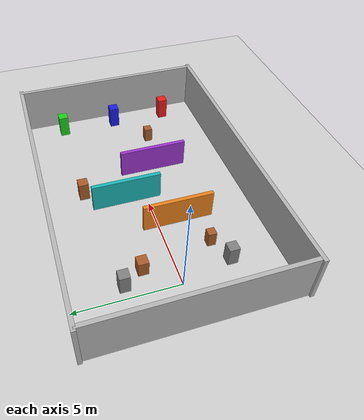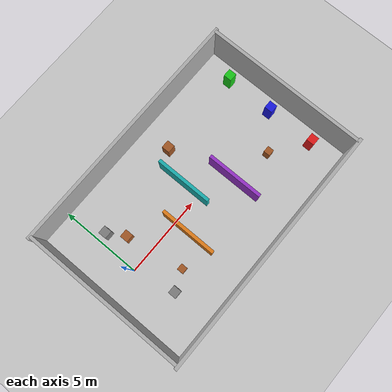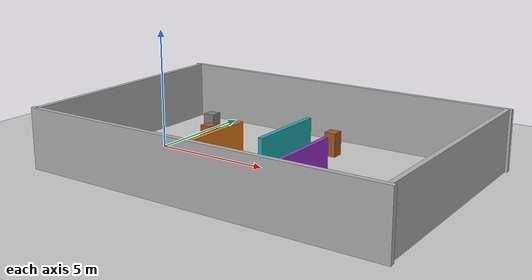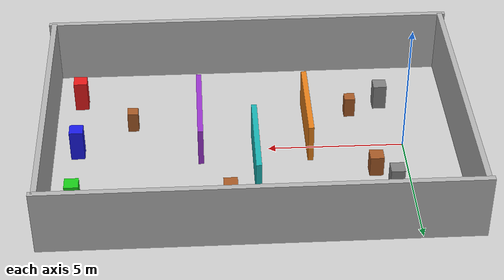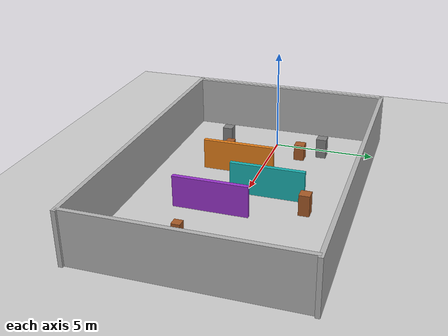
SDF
<?xml version="1.0"?>
<sdf version="1.10">
  <world name="slam_test_world">

    <physics name="default_physics" type="ode">
      <max_step_size>0.001</max_step_size>
      <real_time_factor>1.0</real_time_factor>
      <ode>
        <solver><type>quick</type><iters>50</iters><sor>1.3</sor></solver>
        <constraints>
          <cfm>0.0</cfm><erp>0.2</erp>
          <contact_max_correcting_vel>100.0</contact_max_correcting_vel>
          <contact_surface_layer>0.001</contact_surface_layer>
        </constraints>
      </ode>
    </physics>

    <plugin filename="gz-sim-physics-system"          name="gz::sim::systems::Physics"/>
    <plugin filename="gz-sim-user-commands-system"    name="gz::sim::systems::UserCommands"/>
    <plugin filename="gz-sim-scene-broadcaster-system" name="gz::sim::systems::SceneBroadcaster"/>
    <plugin filename="gz-sim-contact-system"          name="gz::sim::systems::Contact"/>

    <light name="sun" type="directional">
      <pose>0 0 10 0 0 0</pose>
      <cast_shadows>true</cast_shadows>
      <diffuse>0.8 0.8 0.8 1</diffuse>
      <specular>0.2 0.2 0.2 1</specular>
      <direction>-0.5 0.1 -0.9</direction>
    </light>

    <!-- Ground plane -->
    <model name="ground_plane">
      <static>true</static>
      <link name="link">
        <collision name="collision">
          <geometry><plane><normal>0 0 1</normal><size>30 20</size></plane></geometry>
        </collision>
        <visual name="visual">
          <geometry><plane><normal>0 0 1</normal><size>30 20</size></plane></geometry>
          <material><ambient>0.8 0.8 0.8 1</ambient><diffuse>0.8 0.8 0.8 1</diffuse></material>
        </visual>
      </link>
    </model>

    <!-- ===================== OUTER WALLS ===================== -->
    <!-- Room:(12m wide), (10m deep) -->

    <model name="wall_north">
      <static>true</static>
      <pose>5.5 5 1.25 0 0 0</pose>
      <link name="link">
        <collision name="collision"><geometry><box><size>15.4 0.2 2.5</size></box></geometry></collision>
        <visual name="visual">
          <geometry><box><size>15.4 0.2 2.5</size></box></geometry>
          <material><ambient>0.7 0.7 0.7 1</ambient><diffuse>0.7 0.7 0.7 1</diffuse></material>
        </visual>
      </link>
    </model>

    <model name="wall_south">
      <static>true</static>
      <pose>5.5 -5 1.25 0 0 0</pose>
      <link name="link">
        <collision name="collision"><geometry><box><size>15.4 0.2 2.5</size></box></geometry></collision>
        <visual name="visual">
          <geometry><box><size>15.4 0.2 2.5</size></box></geometry>
          <material><ambient>0.7 0.7 0.7 1</ambient><diffuse>0.7 0.7 0.7 1</diffuse></material>
        </visual>
      </link>
    </model>

    <model name="wall_east">
      <static>true</static>
      <pose>13 0 1.25 0 0 0</pose>
      <link name="link">
        <collision name="collision"><geometry><box><size>0.2 10.0 2.5</size></box></geometry></collision>
        <visual name="visual">
          <geometry><box><size>0.2 10.0 2.5</size></box></geometry>
          <material><ambient>0.7 0.7 0.7 1</ambient><diffuse>0.7 0.7 0.7 1</diffuse></material>
        </visual>
      </link>
    </model>

    <model name="wall_west">
      <static>true</static>
      <pose>-2 0 1.25 0 0 0</pose>
      <link name="link">
        <collision name="collision"><geometry><box><size>0.2 10.0 2.5</size></box></geometry></collision>
        <visual name="visual">
          <geometry><box><size>0.2 10.0 2.5</size></box></geometry>
          <material><ambient>0.7 0.7 0.7 1</ambient><diffuse>0.7 0.7 0.7 1</diffuse></material>
        </visual>
      </link>
    </model>

    <!-- ===================== ZONE 1: OBSTACLE COURSE ===================== -->
    <!-- Robot spawns at (0,0) and navigates through these to reach the trash -->

    <!-- Obstacle A -->
    <model name="obs_a">
      <static>true</static>
      <pose>0.6 2.5 0.5 0 0 0</pose>
      <link name="link">
        <collision name="collision"><geometry><box><size>0.5 0.5 1.0</size></box></geometry></collision>
        <visual name="visual">
          <geometry><box><size>0.5 0.5 1.0</size></box></geometry>
          <material><ambient>0.5 0.5 0.5 1</ambient><diffuse>0.5 0.5 0.5 1</diffuse></material>
        </visual>
      </link>
    </model>

    <!-- Obstacle B -->
    <model name="obs_b">
      <static>true</static>
      <pose>0.6 -2.5 0.5 0 0 0</pose>
      <link name="link">
        <collision name="collision"><geometry><box><size>0.5 0.5 1.0</size></box></geometry></collision>
        <visual name="visual">
          <geometry><box><size>0.5 0.5 1.0</size></box></geometry>
          <material><ambient>0.5 0.5 0.5 1</ambient><diffuse>0.5 0.5 0.5 1</diffuse></material>
        </visual>
      </link>
    </model>

    <!-- Obstacle D -->
    <model name="obs_d">
      <static>true</static>
      <pose>1.8 -2.0 0.4 0 0 0</pose>
      <link name="link">
        <collision name="collision"><geometry><box><size>0.4 0.4 0.8</size></box></geometry></collision>
        <visual name="visual">
          <geometry><box><size>0.4 0.4 0.8</size></box></geometry>
          <material><ambient>0.65 0.35 0.15 1</ambient><diffuse>0.65 0.35 0.15 1</diffuse></material>
        </visual>
      </link>
    </model>

    <!-- Obstacle E -->
    <model name="obs_e">
      <static>true</static>
      <pose>1.2 1.5 0.4 0 0 0</pose>
      <link name="link">
        <collision name="collision"><geometry><box><size>0.5 0.5 0.8</size></box></geometry></collision>
        <visual name="visual">
          <geometry><box><size>0.5 0.5 0.8</size></box></geometry>
          <material><ambient>0.65 0.35 0.15 1</ambient><diffuse>0.65 0.35 0.15 1</diffuse></material>
        </visual>
      </link>
    </model>

    <!-- Obstacle G -->
    <model name="obs_g">
      <static>true</static>
      <pose>6.5 3.0 0.5 0 0 0</pose>
      <link name="link">
        <collision name="collision"><geometry><box><size>0.5 0.5 1.0</size></box></geometry></collision>
        <visual name="visual">
          <geometry><box><size>0.5 0.5 1.0</size></box></geometry>
          <material><ambient>0.65 0.35 0.15 1</ambient><diffuse>0.65 0.35 0.15 1</diffuse></material>
        </visual>
      </link>
    </model>

    <!-- Obstacle H -->
    <model name="obs_h">
      <static>true</static>
      <pose>10.0 -1.5 0.4 0 0 0</pose>
      <link name="link">
        <collision name="collision"><geometry><box><size>0.4 0.4 0.8</size></box></geometry></collision>
        <visual name="visual">
          <geometry><box><size>0.4 0.4 0.8</size></box></geometry>
          <material><ambient>0.65 0.35 0.15 1</ambient><diffuse>0.65 0.35 0.15 1</diffuse></material>
        </visual>
      </link>
    </model>

<!-- ===================== ZONE 2: MAZE ===================== -->
    <!--Three walls creating a zigzag corridor.-->

    <!-- Maze wall 1 orange -->
    <model name="maze_1">
      <static>true</static>
      <pose>3.5 -1.0 0.75 0 0 0</pose>
      <link name="link">
        <collision name="collision"><geometry><box><size>0.2 3.5 1.5</size></box></geometry></collision>
        <visual name="visual">
          <geometry><box><size>0.2 3.5 1.5</size></box></geometry>
          <material><ambient>0.9 0.5 0.1 1</ambient><diffuse>0.9 0.5 0.1 1</diffuse></material>
        </visual>
      </link>
    </model>

    <!-- Maze wall 2 teal -->
    <model name="maze_2">
      <static>true</static>
      <pose>5.5 1.0 0.75 0 0 0</pose>
      <link name="link">
        <collision name="collision"><geometry><box><size>0.2 3.5 1.5</size></box></geometry></collision>
        <visual name="visual">
          <geometry><box><size>0.2 3.5 1.5</size></box></geometry>
          <material><ambient>0.1 0.7 0.7 1</ambient><diffuse>0.1 0.7 0.7 1</diffuse></material>
        </visual>
      </link>
    </model>

    <!-- Maze wall 3 purple -->
    <!-- same layout as wall 1 -->
    <model name="maze_3">
      <static>true</static>
      <pose>7.5 -1.0 0.75 0 0 0</pose>
      <link name="link">
        <collision name="collision"><geometry><box><size>0.2 3.5 1.5</size></box></geometry></collision>
        <visual name="visual">
          <geometry><box><size>0.2 3.5 1.5</size></box></geometry>
          <material><ambient>0.6 0.2 0.8 1</ambient><diffuse>0.6 0.2 0.8 1</diffuse></material>
        </visual>
      </link>
    </model>

    <!-- ===================== BIN LINE ===================== -->
    <!-- All 3 bins at x=9.0 -->

    <!-- Red bin south -->
    <model name="bin_red">
      <static>true</static>
      <pose>12.0 -3.0 0.6 0 0 0</pose>
      <link name="link">
        <visual name="visual">
          <geometry><box><size>0.5 0.5 1.2</size></box></geometry>
          <material><ambient>0.9 0.1 0.1 1</ambient><diffuse>0.9 0.1 0.1 1</diffuse></material>
        </visual>
      </link>
    </model>

    <!-- Blue bin centre -->
    <model name="bin_blue">
      <static>true</static>
      <pose>12.0 0.0 0.6 0 0 0</pose>
      <link name="link">
        <visual name="visual">
          <geometry><box><size>0.5 0.5 1.2</size></box></geometry>
          <material><ambient>0.1 0.1 0.9 1</ambient><diffuse>0.1 0.1 0.9 1</diffuse></material>
        </visual>
      </link>
    </model>

    <!-- Green bin north -->
    <model name="bin_green">
      <static>true</static>
      <pose>12.0 3.0 0.6 0 0 0</pose>
      <link name="link">
        <visual name="visual">
          <geometry><box><size>0.5 0.5 1.2</size></box></geometry>
          <material><ambient>0.1 0.8 0.1 1</ambient><diffuse>0.1 0.8 0.1 1</diffuse></material>
        </visual>
      </link>
    </model>

  </world>
</sdf>
